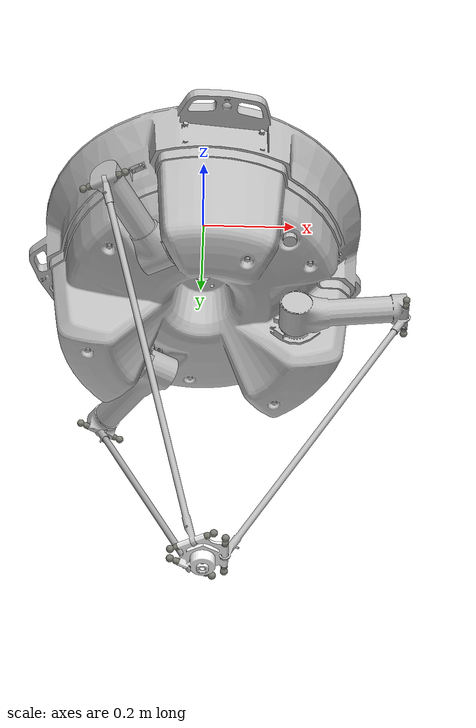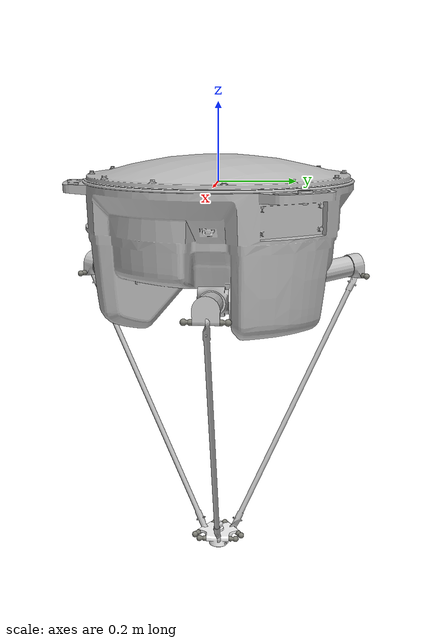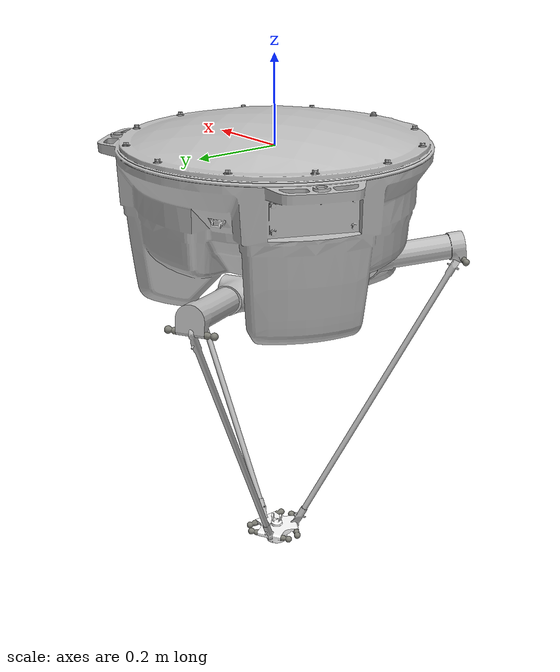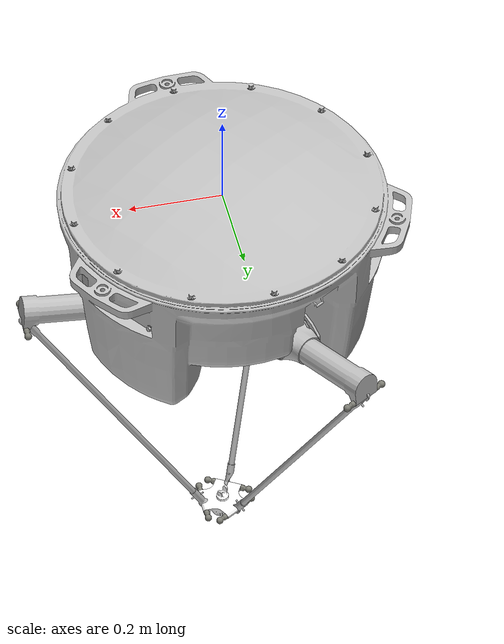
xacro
<?xml version="1.0"?>
<robot xmlns:xacro="http://ros.org/wiki/xacro" name="irb360_800">

  <xacro:include filename="$(find abb_irb360_support)/urdf/irb360_800.xacro"/>
  <xacro:include filename="$(find abb_irb360_support)/urdf/irb360_800_moving_platform.xacro"/>

  <!-- Three arms macro -->
  <xacro:irb360_800 />

  <!-- Attach moving platform to arm 1 -->
  <xacro:irb360_800_moving_platform parent = "arm_1" theta = "1">
    <origin xyz="0 0 0" rpy="-3.14159265358979 0.509224169080082 -3.14159265358979" />
  </xacro:irb360_800_moving_platform>

  <xacro:irb360_800_moving_platform parent = "arm_2" theta = "2">
    <origin xyz="0 0 0" rpy="-3.14159265358979 0.509224169080082 -3.14159265358979" />
  </xacro:irb360_800_moving_platform>

  <xacro:irb360_800_moving_platform parent = "arm_3" theta = "3">
    <origin xyz="0 0 0" rpy="-3.14159265358979 0.509224169080082 -3.14159265358979" />
  </xacro:irb360_800_moving_platform>

</robot>

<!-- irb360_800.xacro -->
<robot xmlns:xacro="http://ros.org/wiki/xacro">
  <xacro:include filename="$(find abb_irb360_support)/urdf/irb360_800_arm.xacro"/>

  <xacro:macro name="irb360_800">

  <!-- Define base link -->
    <link name="base_link">
      <visual>
        <origin xyz="0 0 0" rpy="0 0 0" />
        <geometry>
          <mesh filename="package://abb_irb360_support/meshes/base_link.STL" />
        </geometry>
        <material name="">
          <color rgba="0.745098039215686 0.745098039215686 0.745098039215686 1" />
        </material>
      </visual>
      <collision>
        <origin xyz="0 0 0" rpy="0 0 0" />
        <geometry>
          <mesh filename="package://abb_irb360_support/meshes/base_link.STL" />
        </geometry>
      </collision>
    </link>

  <!-- Attach all arms to base link -->
    <xacro:irb360_800_arm arm="arm_1" theta="1">
      <origin xyz="0.2 0 -0.275" rpy="0 -0.11527 0" />
    </xacro:irb360_800_arm>

    <xacro:irb360_800_arm arm="arm_2" theta="2">
      <origin xyz="-0.1 -0.17321 -0.275" rpy="0 -0.11527 -2.0944" />
    </xacro:irb360_800_arm>

    <xacro:irb360_800_arm arm="arm_3" theta="3">
      <origin xyz="-0.1 0.17321 -0.275" rpy="0 -0.11527 2.0944" />
    </xacro:irb360_800_arm>

  </xacro:macro>
</robot>

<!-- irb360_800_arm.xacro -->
<robot xmlns:xacro="http://ros.org/wiki/xacro">
  <xacro:include filename="$(find abb_resources)/urdf/common_materials.xacro"/>

  <xacro:macro name="irb360_800_arm" params="arm theta *origin">

    <joint name="joint_${theta}" type="continuous">
      <xacro:insert_block name="origin" />
      <parent link="base_link" />
      <child link="${arm}_link_1" />
      <axis xyz="0 1 0" />
      <limit lower="0" upper="0" effort="0" velocity="0" />
    </joint>
    <link name="${arm}_link_1">
      <visual>
        <origin xyz="0 0 0" rpy="0 0 0" />
        <geometry>
          <mesh filename="package://abb_irb360_support/meshes/upper_arm_1.STL" />
        </geometry>
        <material name="">
          <color rgba="0.7451 0.7451 0.7451 1" />
        </material>
      </visual>
      <collision>
        <origin xyz="0 0 0" rpy="0 0 0" />
        <geometry>
          <mesh filename="package://abb_irb360_support/meshes/upper_arm_1.STL" />
        </geometry>
      </collision>
    </link>
    <joint name="uj_${theta}1" type="continuous">
      <origin xyz="0.23344 0 -0.027" rpy="0 0.62449 0" />
      <parent link="${arm}_link_1" />
      <child link="${arm}_link_2" />
      <axis xyz="0 1 0" />
    </joint>
    <link name="${arm}_link_2">
      <visual>
        <origin xyz="0 0 0" rpy="0 0 0" />
        <geometry>
          <mesh filename="package://abb_irb360_support/meshes/upper_universal_link_1.STL" />
        </geometry>
        <material name="">
          <color rgba="0.49804 0.49804 0.46275 1" />
        </material>
      </visual>
      <collision>
        <origin xyz="0 0 0" rpy="0 0 0" />
        <geometry>
          <mesh filename="package://abb_irb360_support/meshes/upper_universal_link_1.STL" />
        </geometry>
      </collision>
    </link>
    <joint name="uj_${theta}2" type="continuous">
      <origin xyz="0 0 0" rpy="1.5708 1.5708 0" />
      <parent link="${arm}_link_2" />
      <child link="${arm}_link_3" />
      <axis xyz="0 1 0" />
    </joint>
    <link name="${arm}_link_3">
      <visual>
        <origin xyz="0 0 0" rpy="0 0 0" />
        <geometry>
          <mesh filename="package://abb_irb360_support/meshes/lower_arm_1.STL" />
        </geometry>
        <material name="">
          <color rgba="0.7451 0.7451 0.7451 1" />
        </material>
      </visual>
      <collision>
        <origin xyz="0 0 0" rpy="0 0 0" />
        <geometry>
          <mesh filename="package://abb_irb360_support/meshes/lower_arm_1.STL" />
        </geometry>
      </collision>
    </link>
    <joint name="uj_${theta}3" type="continuous">
      <origin xyz="0.8 0 0" rpy="-1.5708 0 -1.5708" />
      <parent link="${arm}_link_3" />
      <child link="${arm}_link_4" />
      <axis xyz="1 0 0" />
    </joint>
    <link name="${arm}_link_4">
      <visual>
        <origin xyz="0 0 0" rpy="0 0 0" />
        <geometry>
          <mesh filename="package://abb_irb360_support/meshes/lower_universal_link_1.STL" />
        </geometry>
        <material name="">
          <color rgba="0.49804 0.49804 0.46275 1" />
        </material>
      </visual>
      <collision>
        <origin xyz="0 0 0" rpy="0 0 0" />
        <geometry>
          <mesh filename="package://abb_irb360_support/meshes/lower_universal_link_1.STL" />
        </geometry>
      </collision>
    </link>

  </xacro:macro>
</robot>

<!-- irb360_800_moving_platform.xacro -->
<robot xmlns:xacro="http://ros.org/wiki/xacro">

  <xacro:include filename="$(find abb_resources)/urdf/common_materials.xacro"/>

  <xacro:macro name="irb360_800_moving_platform" params="parent theta *origin">

    <joint name="uj_${theta}4" type="continuous">
      <xacro:insert_block name="origin" />
      <parent link="${parent}_link_4" />
      <child link="${parent}_moving_platform" />
      <axis xyz="0 1 0" />
    </joint>
    <link name="${parent}_moving_platform">
      <xacro:if value="${parent == 'arm_1'}">
        <visual>
          <origin xyz="0 0 0" rpy="0 0 0" />
          <geometry>
            <mesh filename="package://abb_irb360_support/meshes/moving_platform.STL" />
          </geometry>
          <material name="">
            <color rgba="1 1 1 1" />
          </material>
        </visual>
        <collision>
          <origin xyz="0 0 0" rpy="0 0 0" />
          <geometry>
            <mesh filename="package://abb_irb360_support/meshes/moving_platform.STL" />
          </geometry>
        </collision>
      </xacro:if>
    </link>
    <joint name="joint_4${theta}" type="fixed">
      <xacro:if value="${parent == 'arm_1'}">
        <origin xyz="-0.0449999999999976 0 0" rpy="0 0 0" />
      </xacro:if>
      <xacro:if value="${parent == 'arm_2'}">
        <origin xyz="-0.0449999999999976 0 0" rpy="0 0 2.0944" />
      </xacro:if>
      <xacro:if value="${parent == 'arm_3'}">
        <origin xyz="-0.0449999999999976 0 0" rpy="0 0 -2.0944" />
      </xacro:if>
      <parent link="${parent}_moving_platform" />
      <child link="${parent}_end_link" />
      <axis xyz="0 0 1" />
    </joint>
    <link name="${parent}_end_link">
      <xacro:if value="${parent == 'arm_1'}">
        <visual>
          <origin xyz="0 0 0" rpy="0 0 0" />
          <geometry>
            <mesh filename="package://abb_irb360_support/meshes/end_link.STL" />
          </geometry>
          <material name="">
            <color rgba="1 1 1 1" />
          </material>
        </visual>
        <collision>
          <origin xyz="0 0 0" rpy="0 0 0" />
          <geometry>
            <mesh filename="package://abb_irb360_support/meshes/end_link.STL" />
          </geometry>
        </collision>
      </xacro:if>
    </link>

    <!-- ROS-Industrial 'flange' frame: attachment point for EEF models -->
    <joint name="${parent}_tool_mounting_point" type="fixed">
      <origin xyz="0 0 0" rpy="0 0 0"/>
      <parent link="${parent}_end_link"/>
      <child link="${parent}_flange"/>
    </joint>
    <link name="${parent}_flange"/>

    <!-- ROS-Industrial 'tool0' frame: all-zeros tool frame -->
    <joint name="${parent}_tool0_point" type="fixed">
      <origin xyz="0 0 0" rpy="0 0 0" />
      <parent link="${parent}_flange" />
      <child link="${parent}_tool0" />
    </joint>
    <link name="${parent}_tool0" />

  </xacro:macro>

</robot>
